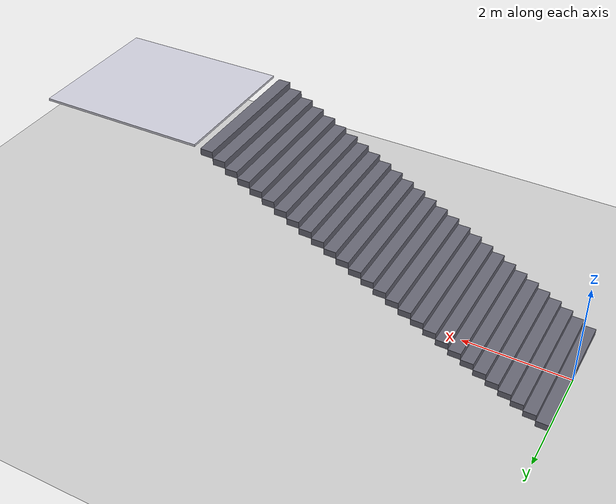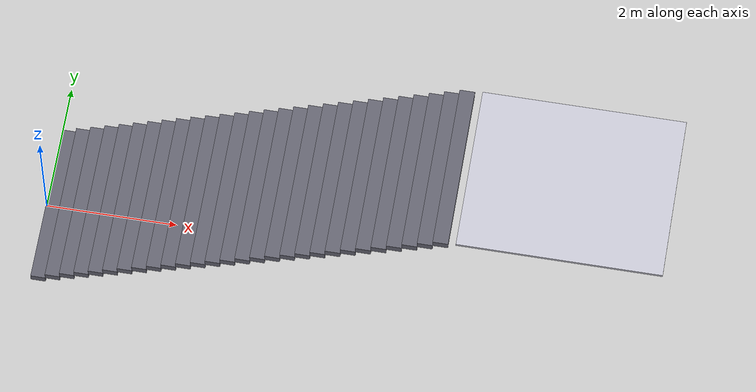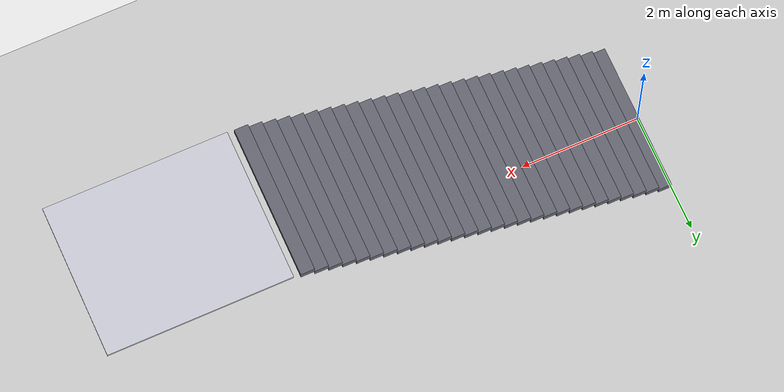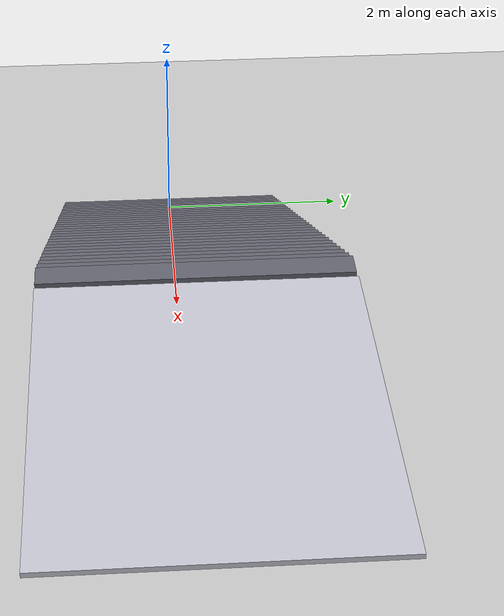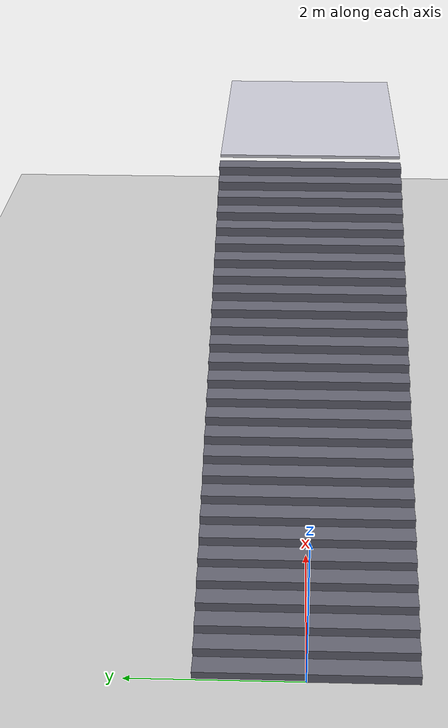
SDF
<?xml version="1.0"?>
<!-- Generated: 2025-10-14T08:30:22.240365 -->
<sdf version="1.10">
  <world name="stair_world">
    <gravity>0 0 -9.81</gravity>

    <!-- Simple sun light (avoid model://sun dependency) -->
    <light type="directional" name="sun">
      <cast_shadows>true</cast_shadows>
      <pose>0 0 10 0 0 0</pose>
      <diffuse>1 1 1 1</diffuse>
      <specular>0.1 0.1 0.1 1</specular>
      <direction>-0.5 0.2 -1</direction>
    </light>

    <!-- Simple infinite ground plane (avoid model://ground_plane dependency) -->
    <model name="ground_plane">
      <static>true</static>
      <link name="link">
        <collision name="collision">
          <geometry>
            <plane>
              <normal>0 0 1</normal>
              <size>100 100</size>
            </plane>
          </geometry>
          <surface>
            <friction>
              <ode>
                <mu>1.0</mu>
                <mu2>1.0</mu2>
              </ode>
            </friction>
          </surface>
        </collision>
        <visual name="visual">
          <geometry>
            <plane>
              <normal>0 0 1</normal>
              <size>100 100</size>
            </plane>
          </geometry>
          <material>
            <ambient>0.8 0.8 0.8 1</ambient>
            <diffuse>0.8 0.8 0.8 1</diffuse>
            <specular>0.8 0.8 0.8 1</specular>
          </material>
        </visual>
      </link>
    </model>

    <!-- Static staircase -->
    <model name="staircase">
      <static>true</static>

      <link name="step_00">
        <pose>0.1125 0.0000 0.0600 0 0 0.000000</pose>
        <collision name="col">
          <geometry><box><size>0.225 2.5 0.12</size></box></geometry>
          <surface><friction><ode><mu>10.0</mu><mu2>10.0</mu2></ode></friction></surface>
        </collision>
        <visual name="vis">
          <geometry><box><size>0.225 2.5 0.12</size></box></geometry>
          <material>
            <ambient>0.3 0.3 0.35 1</ambient>
            <diffuse>0.4 0.4 0.45 1</diffuse>
          </material>
        </visual>
      </link>

      <link name="step_01">
        <pose>0.3375 0.0000 0.1800 0 0 0.000000</pose>
        <collision name="col">
          <geometry><box><size>0.225 2.5 0.12</size></box></geometry>
          <surface><friction><ode><mu>10.0</mu><mu2>10.0</mu2></ode></friction></surface>
        </collision>
        <visual name="vis">
          <geometry><box><size>0.225 2.5 0.12</size></box></geometry>
          <material>
            <ambient>0.3 0.3 0.35 1</ambient>
            <diffuse>0.4 0.4 0.45 1</diffuse>
          </material>
        </visual>
      </link>

      <link name="step_02">
        <pose>0.5625 0.0000 0.3000 0 0 0.000000</pose>
        <collision name="col">
          <geometry><box><size>0.225 2.5 0.12</size></box></geometry>
          <surface><friction><ode><mu>10.0</mu><mu2>10.0</mu2></ode></friction></surface>
        </collision>
        <visual name="vis">
          <geometry><box><size>0.225 2.5 0.12</size></box></geometry>
          <material>
            <ambient>0.3 0.3 0.35 1</ambient>
            <diffuse>0.4 0.4 0.45 1</diffuse>
          </material>
        </visual>
      </link>

      <link name="step_03">
        <pose>0.7875 0.0000 0.4200 0 0 0.000000</pose>
        <collision name="col">
          <geometry><box><size>0.225 2.5 0.12</size></box></geometry>
          <surface><friction><ode><mu>10.0</mu><mu2>10.0</mu2></ode></friction></surface>
        </collision>
        <visual name="vis">
          <geometry><box><size>0.225 2.5 0.12</size></box></geometry>
          <material>
            <ambient>0.3 0.3 0.35 1</ambient>
            <diffuse>0.4 0.4 0.45 1</diffuse>
          </material>
        </visual>
      </link>

      <link name="step_04">
        <pose>1.0125 0.0000 0.5400 0 0 0.000000</pose>
        <collision name="col">
          <geometry><box><size>0.225 2.5 0.12</size></box></geometry>
          <surface><friction><ode><mu>10.0</mu><mu2>10.0</mu2></ode></friction></surface>
        </collision>
        <visual name="vis">
          <geometry><box><size>0.225 2.5 0.12</size></box></geometry>
          <material>
            <ambient>0.3 0.3 0.35 1</ambient>
            <diffuse>0.4 0.4 0.45 1</diffuse>
          </material>
        </visual>
      </link>

      <link name="step_05">
        <pose>1.2375 0.0000 0.6600 0 0 0.000000</pose>
        <collision name="col">
          <geometry><box><size>0.225 2.5 0.12</size></box></geometry>
          <surface><friction><ode><mu>10.0</mu><mu2>10.0</mu2></ode></friction></surface>
        </collision>
        <visual name="vis">
          <geometry><box><size>0.225 2.5 0.12</size></box></geometry>
          <material>
            <ambient>0.3 0.3 0.35 1</ambient>
            <diffuse>0.4 0.4 0.45 1</diffuse>
          </material>
        </visual>
      </link>

      <link name="step_06">
        <pose>1.4625 0.0000 0.7800 0 0 0.000000</pose>
        <collision name="col">
          <geometry><box><size>0.225 2.5 0.12</size></box></geometry>
          <surface><friction><ode><mu>10.0</mu><mu2>10.0</mu2></ode></friction></surface>
        </collision>
        <visual name="vis">
          <geometry><box><size>0.225 2.5 0.12</size></box></geometry>
          <material>
            <ambient>0.3 0.3 0.35 1</ambient>
            <diffuse>0.4 0.4 0.45 1</diffuse>
          </material>
        </visual>
      </link>

      <link name="step_07">
        <pose>1.6875 0.0000 0.9000 0 0 0.000000</pose>
        <collision name="col">
          <geometry><box><size>0.225 2.5 0.12</size></box></geometry>
          <surface><friction><ode><mu>10.0</mu><mu2>10.0</mu2></ode></friction></surface>
        </collision>
        <visual name="vis">
          <geometry><box><size>0.225 2.5 0.12</size></box></geometry>
          <material>
            <ambient>0.3 0.3 0.35 1</ambient>
            <diffuse>0.4 0.4 0.45 1</diffuse>
          </material>
        </visual>
      </link>

      <link name="step_08">
        <pose>1.9125 0.0000 1.0200 0 0 0.000000</pose>
        <collision name="col">
          <geometry><box><size>0.225 2.5 0.12</size></box></geometry>
          <surface><friction><ode><mu>10.0</mu><mu2>10.0</mu2></ode></friction></surface>
        </collision>
        <visual name="vis">
          <geometry><box><size>0.225 2.5 0.12</size></box></geometry>
          <material>
            <ambient>0.3 0.3 0.35 1</ambient>
            <diffuse>0.4 0.4 0.45 1</diffuse>
          </material>
        </visual>
      </link>

      <link name="step_09">
        <pose>2.1375 0.0000 1.1400 0 0 0.000000</pose>
        <collision name="col">
          <geometry><box><size>0.225 2.5 0.12</size></box></geometry>
          <surface><friction><ode><mu>10.0</mu><mu2>10.0</mu2></ode></friction></surface>
        </collision>
        <visual name="vis">
          <geometry><box><size>0.225 2.5 0.12</size></box></geometry>
          <material>
            <ambient>0.3 0.3 0.35 1</ambient>
            <diffuse>0.4 0.4 0.45 1</diffuse>
          </material>
        </visual>
      </link>

      <link name="step_10">
        <pose>2.3625 0.0000 1.2600 0 0 0.000000</pose>
        <collision name="col">
          <geometry><box><size>0.225 2.5 0.12</size></box></geometry>
          <surface><friction><ode><mu>10.0</mu><mu2>10.0</mu2></ode></friction></surface>
        </collision>
        <visual name="vis">
          <geometry><box><size>0.225 2.5 0.12</size></box></geometry>
          <material>
            <ambient>0.3 0.3 0.35 1</ambient>
            <diffuse>0.4 0.4 0.45 1</diffuse>
          </material>
        </visual>
      </link>

      <link name="step_11">
        <pose>2.5875 0.0000 1.3800 0 0 0.000000</pose>
        <collision name="col">
          <geometry><box><size>0.225 2.5 0.12</size></box></geometry>
          <surface><friction><ode><mu>10.0</mu><mu2>10.0</mu2></ode></friction></surface>
        </collision>
        <visual name="vis">
          <geometry><box><size>0.225 2.5 0.12</size></box></geometry>
          <material>
            <ambient>0.3 0.3 0.35 1</ambient>
            <diffuse>0.4 0.4 0.45 1</diffuse>
          </material>
        </visual>
      </link>

      <link name="step_12">
        <pose>2.8125 0.0000 1.5000 0 0 0.000000</pose>
        <collision name="col">
          <geometry><box><size>0.225 2.5 0.12</size></box></geometry>
          <surface><friction><ode><mu>10.0</mu><mu2>10.0</mu2></ode></friction></surface>
        </collision>
        <visual name="vis">
          <geometry><box><size>0.225 2.5 0.12</size></box></geometry>
          <material>
            <ambient>0.3 0.3 0.35 1</ambient>
            <diffuse>0.4 0.4 0.45 1</diffuse>
          </material>
        </visual>
      </link>

      <link name="step_13">
        <pose>3.0375 0.0000 1.6200 0 0 0.000000</pose>
        <collision name="col">
          <geometry><box><size>0.225 2.5 0.12</size></box></geometry>
          <surface><friction><ode><mu>10.0</mu><mu2>10.0</mu2></ode></friction></surface>
        </collision>
        <visual name="vis">
          <geometry><box><size>0.225 2.5 0.12</size></box></geometry>
          <material>
            <ambient>0.3 0.3 0.35 1</ambient>
            <diffuse>0.4 0.4 0.45 1</diffuse>
          </material>
        </visual>
      </link>

      <link name="step_14">
        <pose>3.2625 0.0000 1.7400 0 0 0.000000</pose>
        <collision name="col">
          <geometry><box><size>0.225 2.5 0.12</size></box></geometry>
          <surface><friction><ode><mu>10.0</mu><mu2>10.0</mu2></ode></friction></surface>
        </collision>
        <visual name="vis">
          <geometry><box><size>0.225 2.5 0.12</size></box></geometry>
          <material>
            <ambient>0.3 0.3 0.35 1</ambient>
            <diffuse>0.4 0.4 0.45 1</diffuse>
          </material>
        </visual>
      </link>

      <link name="step_15">
        <pose>3.4875 0.0000 1.8600 0 0 0.000000</pose>
        <collision name="col">
          <geometry><box><size>0.225 2.5 0.12</size></box></geometry>
          <surface><friction><ode><mu>10.0</mu><mu2>10.0</mu2></ode></friction></surface>
        </collision>
        <visual name="vis">
          <geometry><box><size>0.225 2.5 0.12</size></box></geometry>
          <material>
            <ambient>0.3 0.3 0.35 1</ambient>
            <diffuse>0.4 0.4 0.45 1</diffuse>
          </material>
        </visual>
      </link>

      <link name="step_16">
        <pose>3.7125 0.0000 1.9800 0 0 0.000000</pose>
        <collision name="col">
          <geometry><box><size>0.225 2.5 0.12</size></box></geometry>
          <surface><friction><ode><mu>10.0</mu><mu2>10.0</mu2></ode></friction></surface>
        </collision>
        <visual name="vis">
          <geometry><box><size>0.225 2.5 0.12</size></box></geometry>
          <material>
            <ambient>0.3 0.3 0.35 1</ambient>
            <diffuse>0.4 0.4 0.45 1</diffuse>
          </material>
        </visual>
      </link>

      <link name="step_17">
        <pose>3.9375 0.0000 2.1000 0 0 0.000000</pose>
        <collision name="col">
          <geometry><box><size>0.225 2.5 0.12</size></box></geometry>
          <surface><friction><ode><mu>10.0</mu><mu2>10.0</mu2></ode></friction></surface>
        </collision>
        <visual name="vis">
          <geometry><box><size>0.225 2.5 0.12</size></box></geometry>
          <material>
            <ambient>0.3 0.3 0.35 1</ambient>
            <diffuse>0.4 0.4 0.45 1</diffuse>
          </material>
        </visual>
      </link>

      <link name="step_18">
        <pose>4.1625 0.0000 2.2200 0 0 0.000000</pose>
        <collision name="col">
          <geometry><box><size>0.225 2.5 0.12</size></box></geometry>
          <surface><friction><ode><mu>10.0</mu><mu2>10.0</mu2></ode></friction></surface>
        </collision>
        <visual name="vis">
          <geometry><box><size>0.225 2.5 0.12</size></box></geometry>
          <material>
            <ambient>0.3 0.3 0.35 1</ambient>
            <diffuse>0.4 0.4 0.45 1</diffuse>
          </material>
        </visual>
      </link>

      <link name="step_19">
        <pose>4.3875 0.0000 2.3400 0 0 0.000000</pose>
        <collision name="col">
          <geometry><box><size>0.225 2.5 0.12</size></box></geometry>
          <surface><friction><ode><mu>10.0</mu><mu2>10.0</mu2></ode></friction></surface>
        </collision>
        <visual name="vis">
          <geometry><box><size>0.225 2.5 0.12</size></box></geometry>
          <material>
            <ambient>0.3 0.3 0.35 1</ambient>
            <diffuse>0.4 0.4 0.45 1</diffuse>
          </material>
        </visual>
      </link>

      <link name="step_20">
        <pose>4.6125 0.0000 2.4600 0 0 0.000000</pose>
        <collision name="col">
          <geometry><box><size>0.225 2.5 0.12</size></box></geometry>
          <surface><friction><ode><mu>10.0</mu><mu2>10.0</mu2></ode></friction></surface>
        </collision>
        <visual name="vis">
          <geometry><box><size>0.225 2.5 0.12</size></box></geometry>
          <material>
            <ambient>0.3 0.3 0.35 1</ambient>
            <diffuse>0.4 0.4 0.45 1</diffuse>
          </material>
        </visual>
      </link>

      <link name="step_21">
        <pose>4.8375 0.0000 2.5800 0 0 0.000000</pose>
        <collision name="col">
          <geometry><box><size>0.225 2.5 0.12</size></box></geometry>
          <surface><friction><ode><mu>10.0</mu><mu2>10.0</mu2></ode></friction></surface>
        </collision>
        <visual name="vis">
          <geometry><box><size>0.225 2.5 0.12</size></box></geometry>
          <material>
            <ambient>0.3 0.3 0.35 1</ambient>
            <diffuse>0.4 0.4 0.45 1</diffuse>
          </material>
        </visual>
      </link>

      <link name="step_22">
        <pose>5.0625 0.0000 2.7000 0 0 0.000000</pose>
        <collision name="col">
          <geometry><box><size>0.225 2.5 0.12</size></box></geometry>
          <surface><friction><ode><mu>10.0</mu><mu2>10.0</mu2></ode></friction></surface>
        </collision>
        <visual name="vis">
          <geometry><box><size>0.225 2.5 0.12</size></box></geometry>
          <material>
            <ambient>0.3 0.3 0.35 1</ambient>
            <diffuse>0.4 0.4 0.45 1</diffuse>
          </material>
        </visual>
      </link>

      <link name="step_23">
        <pose>5.2875 0.0000 2.8200 0 0 0.000000</pose>
        <collision name="col">
          <geometry><box><size>0.225 2.5 0.12</size></box></geometry>
          <surface><friction><ode><mu>10.0</mu><mu2>10.0</mu2></ode></friction></surface>
        </collision>
        <visual name="vis">
          <geometry><box><size>0.225 2.5 0.12</size></box></geometry>
          <material>
            <ambient>0.3 0.3 0.35 1</ambient>
            <diffuse>0.4 0.4 0.45 1</diffuse>
          </material>
        </visual>
      </link>

      <link name="step_24">
        <pose>5.5125 0.0000 2.9400 0 0 0.000000</pose>
        <collision name="col">
          <geometry><box><size>0.225 2.5 0.12</size></box></geometry>
          <surface><friction><ode><mu>10.0</mu><mu2>10.0</mu2></ode></friction></surface>
        </collision>
        <visual name="vis">
          <geometry><box><size>0.225 2.5 0.12</size></box></geometry>
          <material>
            <ambient>0.3 0.3 0.35 1</ambient>
            <diffuse>0.4 0.4 0.45 1</diffuse>
          </material>
        </visual>
      </link>

      <link name="step_25">
        <pose>5.7375 0.0000 3.0600 0 0 0.000000</pose>
        <collision name="col">
          <geometry><box><size>0.225 2.5 0.12</size></box></geometry>
          <surface><friction><ode><mu>10.0</mu><mu2>10.0</mu2></ode></friction></surface>
        </collision>
        <visual name="vis">
          <geometry><box><size>0.225 2.5 0.12</size></box></geometry>
          <material>
            <ambient>0.3 0.3 0.35 1</ambient>
            <diffuse>0.4 0.4 0.45 1</diffuse>
          </material>
        </visual>
      </link>

      <link name="step_26">
        <pose>5.9625 0.0000 3.1800 0 0 0.000000</pose>
        <collision name="col">
          <geometry><box><size>0.225 2.5 0.12</size></box></geometry>
          <surface><friction><ode><mu>10.0</mu><mu2>10.0</mu2></ode></friction></surface>
        </collision>
        <visual name="vis">
          <geometry><box><size>0.225 2.5 0.12</size></box></geometry>
          <material>
            <ambient>0.3 0.3 0.35 1</ambient>
            <diffuse>0.4 0.4 0.45 1</diffuse>
          </material>
        </visual>
      </link>

      <link name="step_27">
        <pose>6.1875 0.0000 3.3000 0 0 0.000000</pose>
        <collision name="col">
          <geometry><box><size>0.225 2.5 0.12</size></box></geometry>
          <surface><friction><ode><mu>10.0</mu><mu2>10.0</mu2></ode></friction></surface>
        </collision>
        <visual name="vis">
          <geometry><box><size>0.225 2.5 0.12</size></box></geometry>
          <material>
            <ambient>0.3 0.3 0.35 1</ambient>
            <diffuse>0.4 0.4 0.45 1</diffuse>
          </material>
        </visual>
      </link>

      <link name="top_platform">
        <pose>7.9125 0.0000 3.3800 0 0 0.000000</pose>
        <collision name="col">
          <geometry><box><size>3.0 2.5 0.04</size></box></geometry>
          <surface><friction><ode><mu>10.0</mu><mu2>10.0</mu2></ode></friction></surface>
        </collision>
        <visual name="vis">
          <geometry><box><size>3.0 2.5 0.04</size></box></geometry>
          <material>
            <ambient>0.7 0.7 0.75 1</ambient>
            <diffuse>0.8 0.8 0.85 1</diffuse>
          </material>
        </visual>
      </link>

    </model>
  </world>
</sdf>
